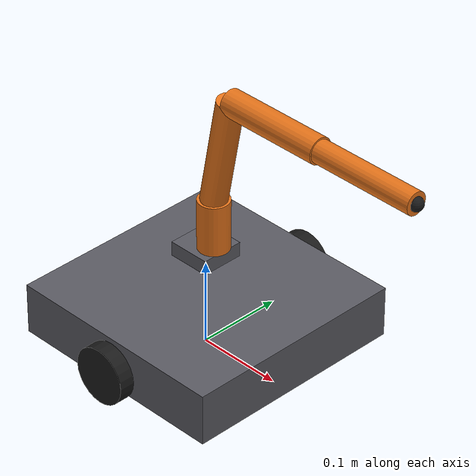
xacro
<?xml version="1.0"?>
<robot xmlns:xacro="http://www.ros.org/wiki/xacro" name="mm_mock">

  <xacro:property name="wheel_radius"     value="0.033"/>
  <xacro:property name="wheel_separation" value="0.287"/>
  <xacro:property name="base_z_off"       value="0.010"/>
  <xacro:property name="arm_mount_z"      value="0.100"/>

  <!-- part2_pkg/ik_solve.py:10-15 와 1:1 대응 -->
  <xacro:property name="BASE_X" value="0.012"/>
  <xacro:property name="BASE_Z" value="0.017"/>
  <xacro:property name="D2"     value="0.0595"/>
  <xacro:property name="E_X"    value="0.024"/>
  <xacro:property name="E_Z"    value="0.128"/>
  <xacro:property name="L2"     value="0.124"/>
  <xacro:property name="L3"     value="0.126"/>

  <material name="grey">  <color rgba="0.35 0.35 0.38 1"/></material>
  <material name="dark">  <color rgba="0.10 0.10 0.10 1"/></material>
  <material name="orange"><color rgba="0.90 0.45 0.10 1"/></material>

  <xacro:macro name="dummy_inertial" params="m:=0.1">
    <inertial>
      <mass value="${m}"/>
      <inertia ixx="1e-4" ixy="0" ixz="0" iyy="1e-4" iyz="0" izz="1e-4"/>
    </inertial>
  </xacro:macro>

  <!-- ================= 이동부 (TurtleBot3 Waffle) ================= -->

  <link name="base_footprint"/>

  <link name="base_link">
    <visual>
      <origin xyz="0 0 0.03"/>
      <geometry><box size="0.266 0.266 0.06"/></geometry>
      <material name="grey"/>
    </visual>
    <xacro:dummy_inertial m="1.0"/>
  </link>

  <joint name="base_joint" type="fixed">
    <parent link="base_footprint"/>
    <child  link="base_link"/>
    <origin xyz="0 0 ${base_z_off}"/>
  </joint>

  <link name="wheel_left_link">
    <visual>
      <origin rpy="1.5707963 0 0"/>
      <geometry><cylinder radius="${wheel_radius}" length="0.018"/></geometry>
      <material name="dark"/>
    </visual>
    <xacro:dummy_inertial/>
  </link>

  <joint name="wheel_left_joint" type="continuous">
    <parent link="base_link"/>
    <child  link="wheel_left_link"/>
    <origin xyz="0 ${wheel_separation/2} ${wheel_radius - base_z_off}"/>
    <axis xyz="0 1 0"/>
  </joint>

  <link name="wheel_right_link">
    <visual>
      <origin rpy="1.5707963 0 0"/>
      <geometry><cylinder radius="${wheel_radius}" length="0.018"/></geometry>
      <material name="dark"/>
    </visual>
    <xacro:dummy_inertial/>
  </link>

  <joint name="wheel_right_joint" type="continuous">
    <parent link="base_link"/>
    <child  link="wheel_right_link"/>
    <origin xyz="0 ${-wheel_separation/2} ${wheel_radius - base_z_off}"/>
    <axis xyz="0 1 0"/>
  </joint>

  <link name="caster_link">
    <visual>
      <geometry><sphere radius="0.012"/></geometry>
      <material name="dark"/>
    </visual>
    <xacro:dummy_inertial m="0.01"/>
  </link>

  <joint name="caster_joint" type="fixed">
    <parent link="base_link"/>
    <child  link="caster_link"/>
    <origin xyz="-0.10 0 ${0.012 - base_z_off}"/>
  </joint>

  <link name="link1">
    <visual>
      <origin xyz="0 0 0.0085"/>
      <geometry><box size="0.05 0.05 0.017"/></geometry>
      <material name="grey"/>
    </visual>
    <xacro:dummy_inertial/>
  </link>

  <joint name="arm_mount_joint" type="fixed">
    <parent link="base_link"/>
    <child  link="link1"/>
    <origin xyz="0 0 ${arm_mount_z}"/>
  </joint>

  <link name="link2">
    <visual>
      <origin xyz="0 0 ${D2/2}"/>
      <geometry><cylinder radius="0.018" length="${D2}"/></geometry>
      <material name="orange"/>
    </visual>
    <xacro:dummy_inertial/>
  </link>

  <joint name="joint1" type="revolute">
    <parent link="link1"/>
    <child  link="link2"/>
    <origin xyz="${BASE_X} 0 ${BASE_Z}"/>
    <axis xyz="0 0 1"/>
    <limit lower="-3.142" upper="3.142" effort="1.0" velocity="4.8"/>
  </joint>

  <link name="link3">
    <visual>
      <origin xyz="${E_X/2} 0 ${E_Z/2}" rpy="0 ${atan2(E_X, E_Z)} 0"/>
      <geometry><cylinder radius="0.015" length="${sqrt(E_X*E_X + E_Z*E_Z)}"/></geometry>
      <material name="orange"/>
    </visual>
    <xacro:dummy_inertial/>
  </link>

  <joint name="joint2" type="revolute">
    <parent link="link2"/>
    <child  link="link3"/>
    <origin xyz="0 0 ${D2}"/>
    <axis xyz="0 1 0"/>
    <limit lower="-2.050" upper="1.571" effort="1.0" velocity="4.8"/>
  </joint>

  <link name="link4">
    <visual>
      <origin xyz="${L2/2} 0 0" rpy="0 1.5707963 0"/>
      <geometry><cylinder radius="0.015" length="${L2}"/></geometry>
      <material name="orange"/>
    </visual>
    <xacro:dummy_inertial/>
  </link>

  <joint name="joint3" type="revolute">
    <parent link="link3"/>
    <child  link="link4"/>
    <origin xyz="${E_X} 0 ${E_Z}"/>
    <axis xyz="0 1 0"/>
    <limit lower="-1.571" upper="1.530" effort="1.0" velocity="4.8"/>
  </joint>

  <link name="link5">
    <visual>
      <origin xyz="${L3/2} 0 0" rpy="0 1.5707963 0"/>
      <geometry><cylinder radius="0.013" length="${L3}"/></geometry>
      <material name="orange"/>
    </visual>
    <xacro:dummy_inertial/>
  </link>

  <joint name="joint4" type="revolute">
    <parent link="link4"/>
    <child  link="link5"/>
    <origin xyz="${L2} 0 0"/>
    <axis xyz="0 1 0"/>
    <limit lower="-1.800" upper="2.000" effort="1.0" velocity="4.8"/>
  </joint>

  <link name="end_effector">
    <visual>
      <geometry><sphere radius="0.008"/></geometry>
      <material name="dark"/>
    </visual>
    <xacro:dummy_inertial m="0.01"/>
  </link>

  <joint name="ee_joint" type="fixed">
    <parent link="link5"/>
    <child  link="end_effector"/>
    <origin xyz="${L3} 0 0"/>
  </joint>

  <!-- ================= ros2_control : mock hardware ================= -->

  <ros2_control name="MMMockSystem" type="system">

    <hardware>
      <plugin>mock_components/GenericSystem</plugin>
      <param name="calculate_dynamics">true</param>
    </hardware>

    <joint name="joint1">
      <command_interface name="position"/>
      <state_interface name="position"><param name="initial_value">0.0</param></state_interface>
      <state_interface name="velocity"/>
    </joint>
    <joint name="joint2">
      <command_interface name="position"/>
      <state_interface name="position"><param name="initial_value">0.0</param></state_interface>
      <state_interface name="velocity"/>
    </joint>
    <joint name="joint3">
      <command_interface name="position"/>
      <state_interface name="position"><param name="initial_value">0.0</param></state_interface>
      <state_interface name="velocity"/>
    </joint>
    <joint name="joint4">
      <command_interface name="position"/>
      <state_interface name="position"><param name="initial_value">0.0</param></state_interface>
      <state_interface name="velocity"/>
    </joint>

    <joint name="wheel_left_joint">
      <command_interface name="velocity"/>
      <state_interface name="position"><param name="initial_value">0.0</param></state_interface>
      <state_interface name="velocity"/>
    </joint>
    <joint name="wheel_right_joint">
      <command_interface name="velocity"/>
      <state_interface name="position"><param name="initial_value">0.0</param></state_interface>
      <state_interface name="velocity"/>
    </joint>

  </ros2_control>

</robot>
